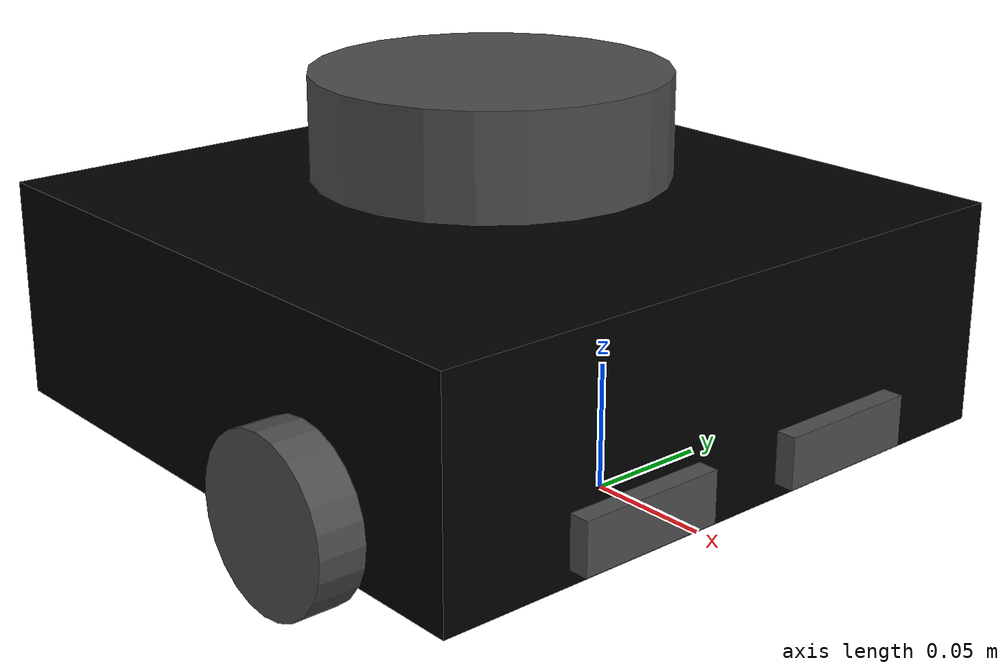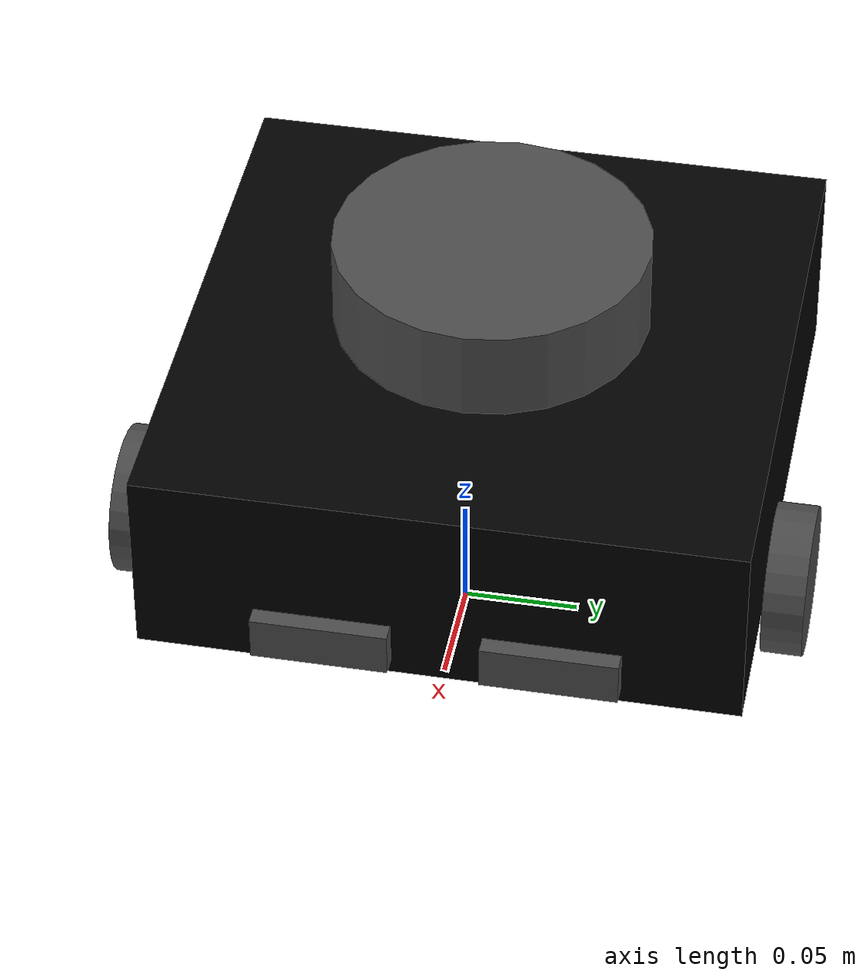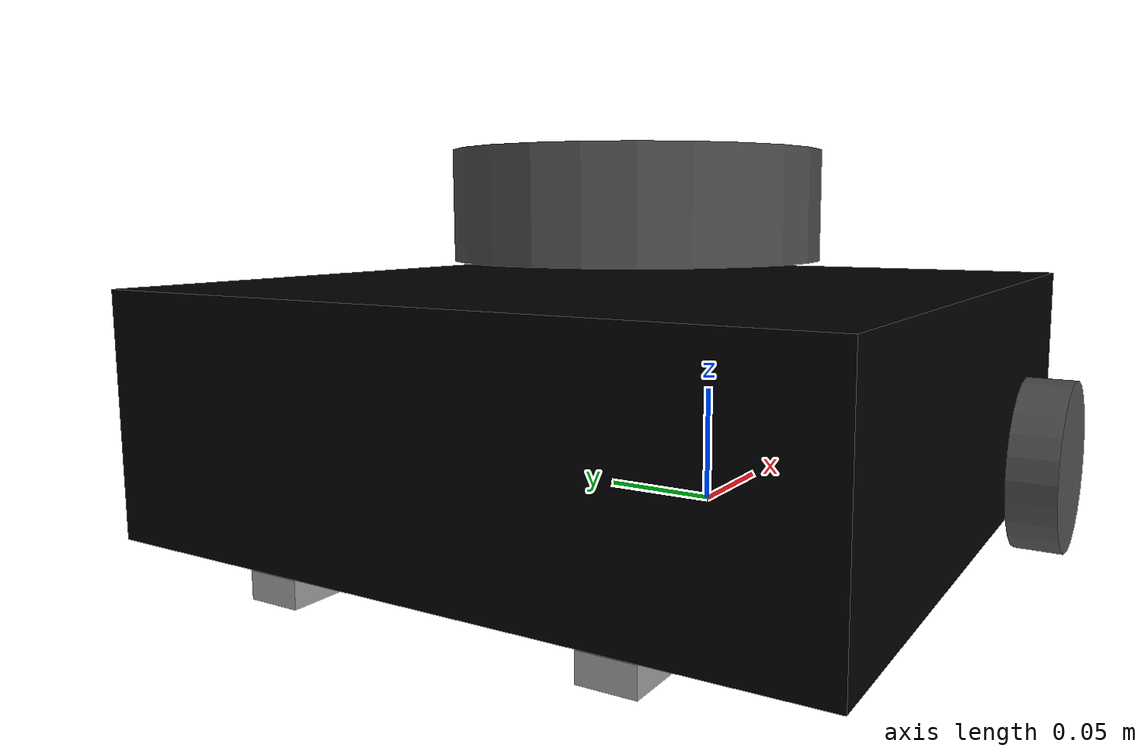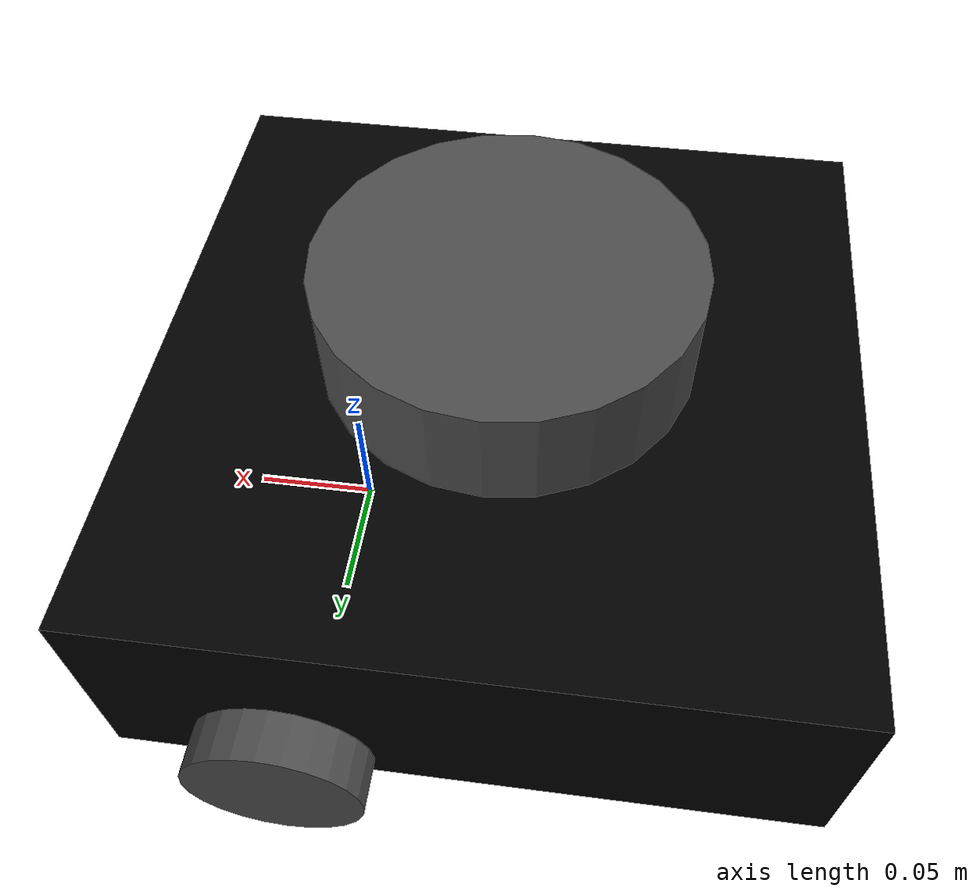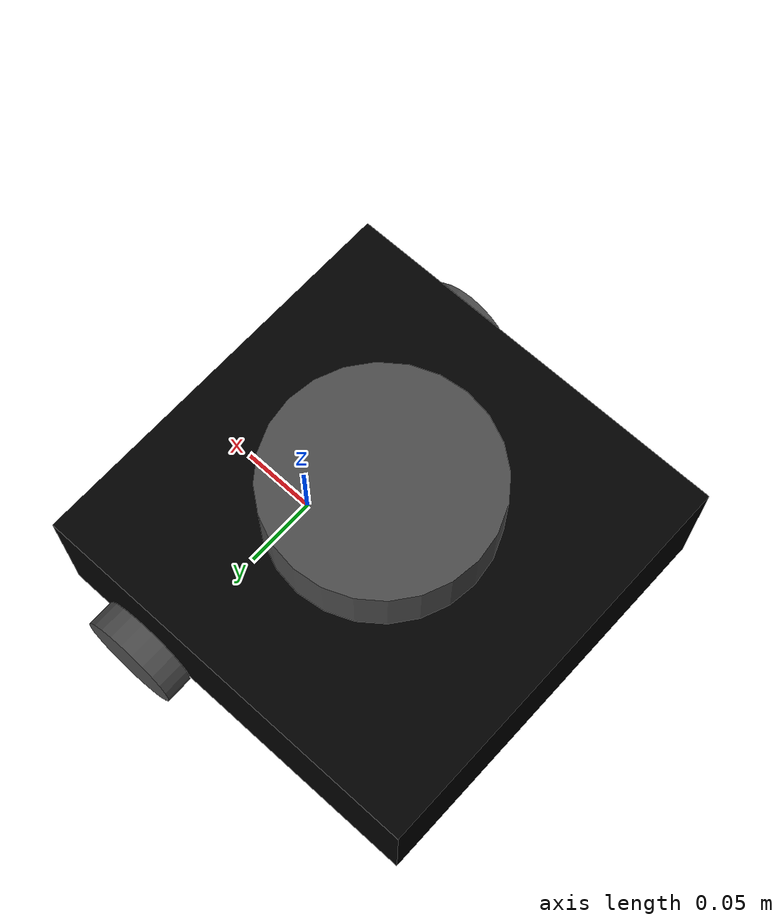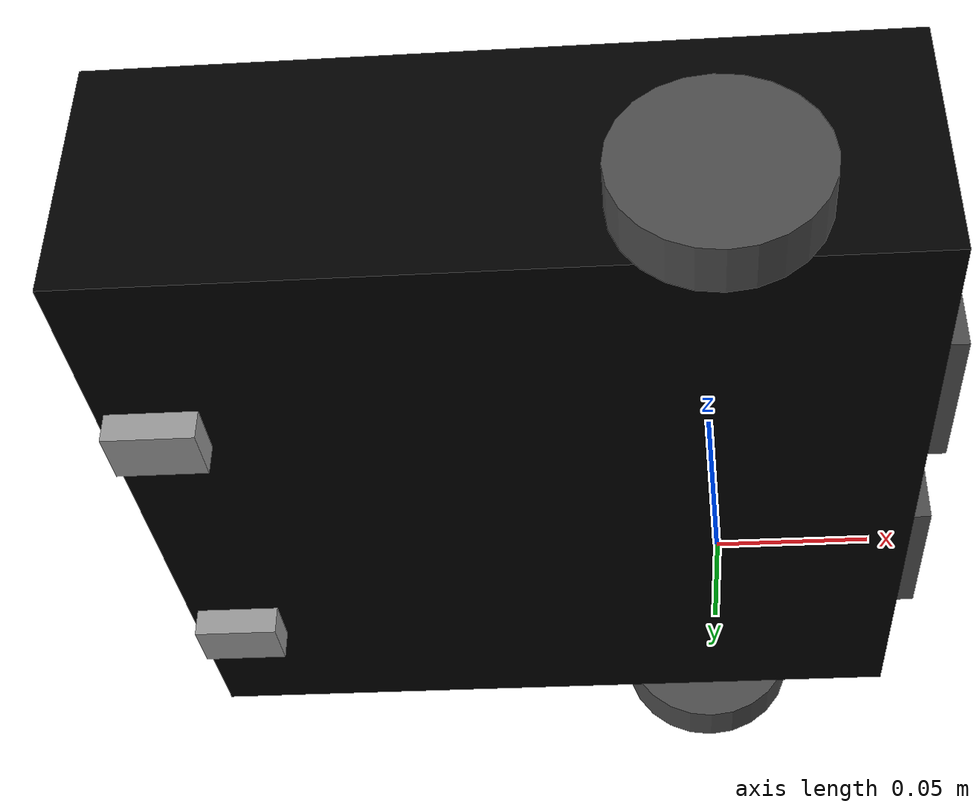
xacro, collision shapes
<?xml version="1.0" ?>
<robot name="turtlebot3_waffle_pi"
  xmlns:xacro="http://ros.org/wiki/xacro">
  <xacro:include filename="$(find turtlebot3_description)/urdf/common_properties.xacro"/>
  <xacro:include filename="$(find turtlebot3_description)/urdf/turtlebot3_waffle_pi.gazebo.xacro"/>
  <link name="base_footprint"/>
  <joint name="base_joint" type="fixed">
    <parent link="base_footprint"/>
    <child link="base_link" />
    <origin xyz="0 0 0.010" rpy="0 0 0"/>
  </joint>
  <link name="base_link">
    <visual>
      <origin xyz="-0.064 0 0.0" rpy="0 0 0"/>
      <geometry>
        <mesh filename="package://turtlebot3_description/meshes/bases/waffle_pi_base.stl" scale="0.001 0.001 0.001"/>
      </geometry>
      <material name="black"/>
    </visual>
    <collision name = "base_link_collision">
      <origin xyz="-0.064 0 0.048" rpy="0 0 0"/>
      <geometry>
        <box size="0.265 0.265 0.089"/>
      </geometry>
    </collision>
    <inertial>
      <origin xyz="-0.064 0 0" rpy="0 0 0"/>
      <mass value="1"/>
      <inertia ixx="0.01" ixy="0.0" ixz="0.0" iyy="0.01" iyz="0.0" izz="0.01" />
    </inertial>
  </link>

  <joint name="wheel_left_joint" type="continuous">
    <parent link="base_link"/>
    <child link="wheel_left_link"/>
    <origin xyz="0.0 0.144 0.023" rpy="${-M_PI*0.5} 0 0"/>
    <axis xyz="0 0 1"/>
  </joint>
  <link name="wheel_left_link">
    <visual>
      <origin xyz="0 0 0" rpy="${M_PI*0.5} 0 0"/>
      <geometry>
        <mesh filename="package://turtlebot3_description/meshes/wheels/left_tire.stl" scale="0.001 0.001 0.001"/>
      </geometry>
      <material name="dark"/>
    </visual>
    <collision name = "wheel_left_link_collision">
      <origin rpy="0 0 0" xyz="0 0 0"/>
      <geometry>
        <cylinder length="0.018" radius="0.033"/>
      </geometry>
    </collision>
    <inertial>
      <origin xyz="0 0 0" />
      <mass value="0.01" />
      <inertia ixx="0.001" ixy="0.0" ixz="0.0" iyy="0.001" iyz="0.0" izz="0.001" />
    </inertial>
  </link>
  <joint name="wheel_right_joint" type="continuous">
    <parent link="base_link"/>
    <child link="wheel_right_link"/>
    <origin xyz="0.0 -0.144 0.023" rpy="${-M_PI*0.5} 0 0"/>
    <axis xyz="0 0 1"/>
  </joint>
  <link name="wheel_right_link">
    <visual>
      <origin xyz="0 0 0" rpy="${M_PI*0.5} 0 0"/>
      <geometry>
        <mesh filename="package://turtlebot3_description/meshes/wheels/right_tire.stl" scale="0.001 0.001 0.001"/>
      </geometry>
      <material name="dark"/>
    </visual>
    <collision>
      <origin rpy="0 0 0" xyz="0 0 0"/>
      <geometry>
        <cylinder length="0.018" radius="0.033"/>
      </geometry>
    </collision>
    <inertial>
      <origin xyz="0 0 0" />
      <mass value="0.01" />
      <inertia ixx="0.001" ixy="0.0" ixz="0.0" iyy="0.001" iyz="0.0" izz="0.001" />
    </inertial>
  </link>
  <joint name="caster_back_right_joint" type="fixed">
    <parent link="base_link"/>
    <child link="caster_back_right_link"/>
    <origin xyz="-0.177 -0.064 -0.004" rpy="${-M_PI*0.5} 0 0"/>
  </joint>
  <link name="caster_back_right_link">
    <collision>
      <origin rpy="0 0 0" xyz="0 0 0"/>
      <geometry>
        <box size="0.030 0.010 0.020"/>
      </geometry>
    </collision>
    <inertial>
      <origin xyz="0 0 0" />
      <mass value="0.01" />
      <inertia ixx="0.001" ixy="0.0" ixz="0.0" iyy="0.001" iyz="0.0" izz="0.001" />
    </inertial>
  </link>
  <joint name="caster_back_left_joint" type="fixed">
    <parent link="base_link"/>
    <child link="caster_back_left_link"/>
    <origin xyz="-0.177 0.064 -0.004" rpy="${-M_PI*0.5} 0 0"/>
  </joint>
  <link name="caster_back_left_link">
    <collision>
      <origin rpy="0 0 0" xyz="0 0 0"/>
      <geometry>
        <box size="0.030 0.010 0.020"/>
      </geometry>
    </collision>
    <inertial>
      <origin xyz="0 0 0" />
      <mass value="0.01" />
      <inertia ixx="0.001" ixy="0.0" ixz="0.0" iyy="0.001" iyz="0.0" izz="0.001" />
    </inertial>
  </link>
  <joint name="imu_joint" type="fixed">
    <parent link="base_link"/>
    <child link="imu_link"/>
    <origin xyz="0.0 0 0.068" rpy="0 0 0"/>
  </joint>
  <link name="imu_link"/>
  <joint name="scan_joint" type="fixed">
    <parent link="base_link"/>
    <child link="base_scan"/>
    <origin xyz="-0.064 0 0.121" rpy="0 0 0"/>
  </joint>
  <link name="base_scan">
    <visual>
      <origin xyz="0 0 0.0" rpy="0 0 0"/>
      <geometry>
        <mesh filename="package://turtlebot3_description/meshes/sensors/lds.stl" scale="0.001 0.001 0.001"/>
      </geometry>
      <material name="dark"/>
    </visual>
    <collision>
      <origin rpy="0 0 0" xyz="0 0 0"/>
      <geometry>
        <cylinder length="0.0408" radius="0.070"/>
      </geometry>
    </collision>
    <inertial>
      <mass value="0.01" />
      <origin xyz="0 0 0" />
      <inertia ixx="0.001" ixy="0.0" ixz="0.0" iyy="0.001" iyz="0.0" izz="0.001" />
    </inertial>
  </link>
  <joint name="camera_joint" type="fixed">
    <origin xyz="0.073 -0.011 0.084" rpy="0 0 0"/>
    <parent link="base_link"/>
    <child link="camera_link"/>
  </joint>
  <link name="camera_link"/>
  <joint name="camera_rgb_joint" type="fixed">
    <origin xyz="0.003 0.011 0.008" rpy="0 0 0"/>
    <parent link="camera_link"/>
    <child link="camera_rgb_frame"/>
  </joint>
  <link name="camera_rgb_frame"/>
  <joint name="camera_rgb_optical_joint" type="fixed">
    <origin xyz="0 0 0" rpy="${-M_PI/2} 0 ${-M_PI/2}"/>
    <parent link="camera_rgb_frame"/>
    <child link="camera_rgb_optical_frame"/>
  </joint>
  <link name="camera_rgb_optical_frame"/>

  <joint name="right_hold" type="fixed">
    <parent link="base_link"/>
    <child link="right_hold_link"/>
    <origin xyz="0.07 -0.05 0.02" rpy="0 ${-M_PI*0.5} 0"/>
    <axis xyz="0 0 1"/>
  </joint>
  <link name="right_hold_link">
    <visual>
      <origin xyz="0 0 0" rpy="${M_PI*0.5} 0 0"/>
      <geometry>
        <box size="0.02 0.06 0.013"/>
      </geometry>
      <material name="dark"/>
    </visual>
    <collision name = "right_hold_collision">
      <origin rpy="0 0 0" xyz="0 0 0"/>
      <geometry>
        <box size="0.02 0.06 0.013"/>
      </geometry>
    </collision>
    <inertial>
      <origin xyz="0 0 0" />
      <mass value="0.01" />
      <inertia ixx="0.001" ixy="0.0" ixz="0.0" iyy="0.001" iyz="0.0" izz="0.001" />
    </inertial>
  </link>
  <joint name="left_hold" type="fixed">
    <parent link="base_link"/>
    <child link="left_hold_link"/>
    <origin xyz="0.07 0.05 0.02" rpy="0 ${-M_PI*0.5} 0"/>
    <axis xyz="0 0 1"/>
  </joint>
  <link name="left_hold_link">
    <visual>
      <origin xyz="0 0 0" rpy="${M_PI*0.5} 0 0"/>
      <geometry>
        <box size="0.02 0.06 0.013"/>
      </geometry>
      <material name="dark"/>
    </visual>
    <collision name = "left_hold_collision">
      <origin rpy="0 0 0" xyz="0 0 0"/>
      <geometry>
        <box size="0.02 0.06 0.013"/>
      </geometry>
    </collision>
    <inertial>
      <origin xyz="0 0 0" />
      <mass value="0.01" />
      <inertia ixx="0.001" ixy="0.0" ixz="0.0" iyy="0.001" iyz="0.0" izz="0.001" />
    </inertial>
  </link>
</robot>

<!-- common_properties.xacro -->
<robot name="xacro_properties" xmlns:xacro="http://ros.org/wiki/xacro">
  <xacro:property name="M_PI" value="3.1415926535897931" />

  <!-- Init colour -->
  <material name="black">
      <color rgba="0.0 0.0 0.0 1.0"/>
  </material>

  <material name="dark">
    <color rgba="0.3 0.3 0.3 1.0"/>
  </material>
  <material name="light_black">
    <color rgba="0.4 0.4 0.4 1.0"/>
  </material>

  <material name="blue">
    <color rgba="0.0 0.0 0.8 1.0"/>
  </material>

  <material name="green">
    <color rgba="0.0 0.8 0.0 1.0"/>
  </material>

  <material name="grey">
    <color rgba="0.5 0.5 0.5 1.0"/>
  </material>

  <material name="orange">
    <color rgba="${255/255} ${108/255} ${10/255} 1.0"/>
  </material>

  <material name="brown">
    <color rgba="${222/255} ${207/255} ${195/255} 1.0"/>
  </material>

  <material name="red">
    <color rgba="0.8 0.0 0.0 1.0"/>
  </material>

  <material name="white">
    <color rgba="1.0 1.0 1.0 1.0"/>
  </material>

  <material name="red_race">
      <color rgba="${191/255} ${60/255} ${58/255} 1.0"/>
  </material>
</robot>
